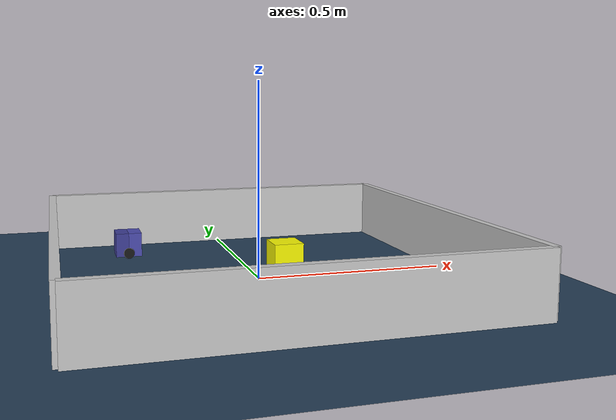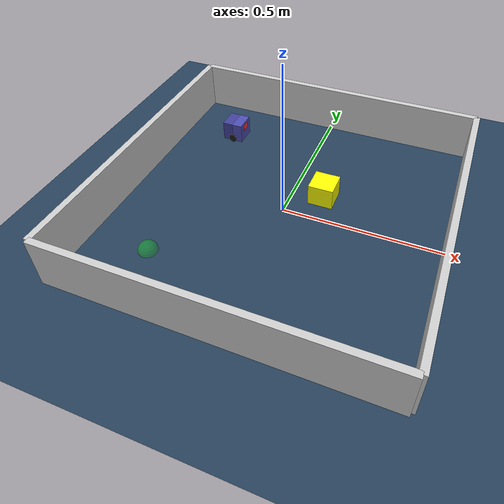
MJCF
<?xml version="1.0" encoding="utf-8"?>
<mujoco model="car_empty_walled">
  <option timestep="0.002" integrator="implicitfast" cone="elliptic" iterations="100" gravity="0 0 -9.81"/>
  <default>
    <geom density="1"/>
  </default>
  <asset>
    <texture builtin="gradient" height="3072" rgb1="0.3 0.5 0.7" rgb2="0 0 0" type="skybox" width="512"/>
    <texture builtin="checker" height="300" mark="edge" markrgb="0.8 0.8 0.8" name="groundplane" rgb1="0.2 0.3 0.4" rgb2="0.1 0.2 0.3" type="2d" width="300"/>
    <material name="groundplane" reflectance="0.2" texrepeat="5 5" texture="groundplane" texuniform="true"/>
  </asset>
  <worldbody>
    <light dir="0 0 -1" directional="true" pos="0 0 1.5"/>
    <geom condim="4" friction="0.5 0.005 0.001" material="groundplane" name="floor" size="0 0 0.05" type="plane"/>
    <body name="walls">
      <geom name="wall_north" condim="4" pos="0 0.5 0.08" rgba="0.8 0.8 0.8 1" size="0.5 0.01 0.08" type="box"/>
      <geom name="wall_south" condim="4" pos="0 -0.5 0.08" rgba="0.8 0.8 0.8 1" size="0.5 0.01 0.08" type="box"/>
      <geom name="wall_east" condim="4" pos="0.5 0 0.08" rgba="0.8 0.8 0.8 1" size="0.01 0.5 0.08" type="box"/>
      <geom name="wall_west" condim="4" pos="-0.5 0 0.08" rgba="0.8 0.8 0.8 1" size="0.01 0.5 0.08" type="box"/>
    </body>

    <!-- Single movable object near the center -->
    <body name="obstacle_1_movable">
      <geom name="obstacle_1_movable" condim="4" pos="0.10 0.10 0.035" euler="0 0 0"
            friction="1.0 0.005 0.001" rgba="1 1 0 1" size="0.040 0.040 0.035" type="box" mass="0.1"/>
      <joint type="free"/>
    </body>

    <!-- Goal site at the opposite side so the robot has a reason to push -->
    <site name="goal" pos="-0.30 -0.30 0.0" rgba="0 1 0 0.3" size="0.03" type="sphere"/>

    <!-- Diff-drive car body at a corner -->
    <body name="car" pos="-0.30 0.30 0.010">
      <freejoint name="car_freejoint"/>
      <inertial pos="0.0 0 0.0375" mass="0.35" diaginertia="0.000266 0.000266 0.000286"/>
      <geom name="front_chassis_collision" type="box" pos="0.0175 0 0.0375"
            size="0.0175 0.035 0.0325" rgba="0.3 0.3 0.7 1"/>
      <geom name="rear_chassis_collision" type="box" pos="-0.0175 0 0.0375"
            size="0.0175 0.035 0.0325" rgba="0.25 0.25 0.6 1"/>
      <geom name="front_marker" type="box" pos="0.034 0 0.0505"
            size="0.002 0.015 0.010" rgba="1.0 0.2 0.2 1" contype="0" conaffinity="0"/>

      <body name="rear_support_body" pos="-0.030 0.0 0.0025">
        <joint name="rear_caster_joint" type="ball" damping="0.0001"/>
        <inertial pos="0 0 0" mass="0.025" diaginertia="0.000001 0.000001 0.000001"/>
        <geom name="rear_support" type="sphere" pos="0 0 0" size="0.0025"
              friction="0.0 0.0 0.0" rgba="0.7 0.1 0.1 1"/>
      </body>
      <body name="front_support_body" pos="0.030 0.0 0.0025">
        <joint name="front_caster_joint" type="ball" damping="0.0001"/>
        <inertial pos="0 0 0" mass="0.025" diaginertia="0.000001 0.000001 0.000001"/>
        <geom name="front_support" type="sphere" pos="0 0 0" size="0.0025"
              friction="0.0 0.0 0.0" rgba="0.1 0.7 0.1 1"/>
      </body>

      <body name="left_wheel" pos="0.0 0.0375 0.015">
        <inertial pos="0 0 0" mass="0.05" diaginertia="0.000003 0.000006 0.000003"/>
        <joint name="left_wheel_joint" type="hinge" axis="0 1 0" damping="0.0001"/>
        <geom name="left_wheel_collision" type="cylinder" size="0.015 0.0005"
              euler="90 0 0" rgba="0.1 0.1 0.1 1"/>
      </body>
      <body name="right_wheel" pos="0.0 -0.0375 0.015">
        <inertial pos="0 0 0" mass="0.05" diaginertia="0.000003 0.000006 0.000003"/>
        <joint name="right_wheel_joint" type="hinge" axis="0 1 0" damping="0.0001"/>
        <geom name="right_wheel_collision" type="cylinder" size="0.015 0.0005"
              euler="90 0 0" rgba="0.1 0.1 0.1 1"/>
      </body>
    </body>
  </worldbody>
  <actuator>
    <motor name="left_wheel_drive" joint="left_wheel_joint"
           gear="1" ctrlrange="-25.0 25.0" forcerange="-0.3 0.3"/>
    <motor name="right_wheel_drive" joint="right_wheel_joint"
           gear="1" ctrlrange="-25.0 25.0" forcerange="-0.3 0.3"/>
  </actuator>
</mujoco>
